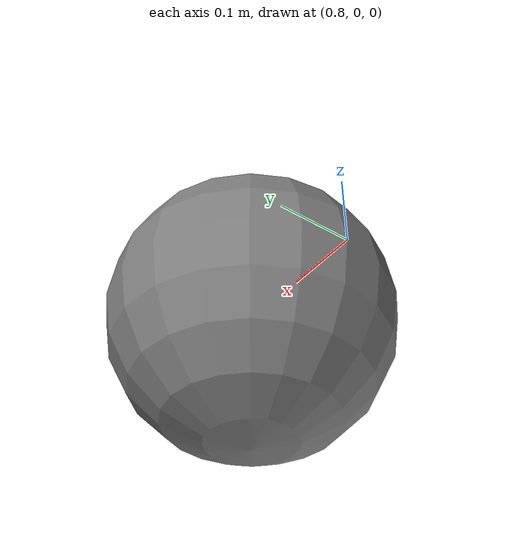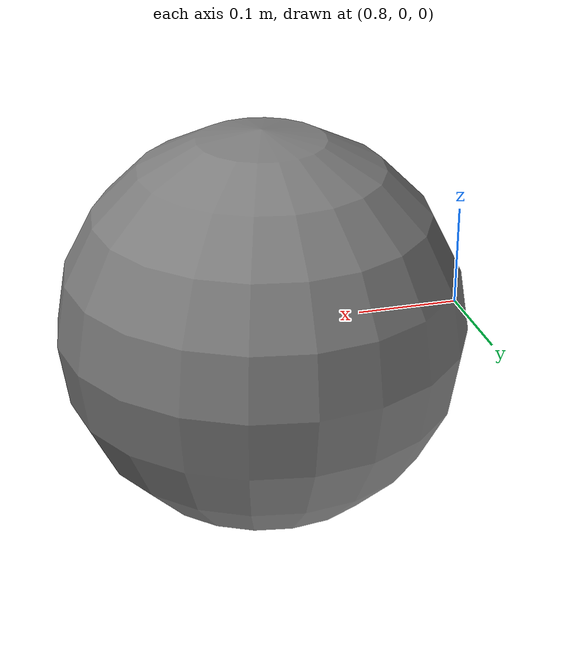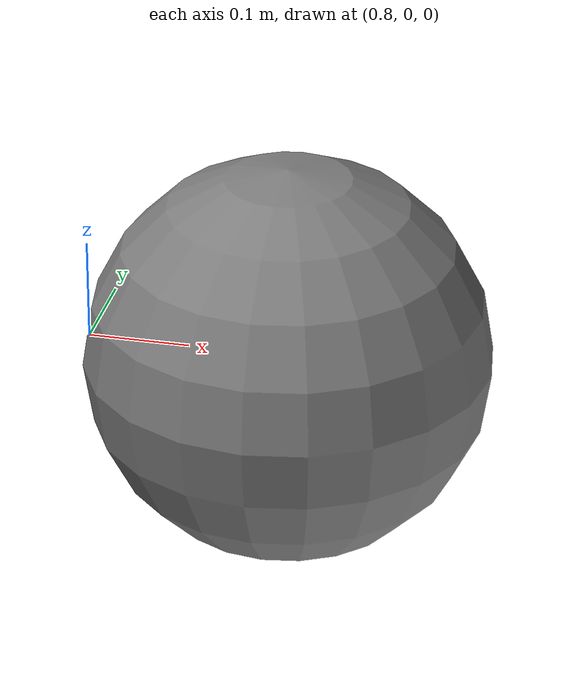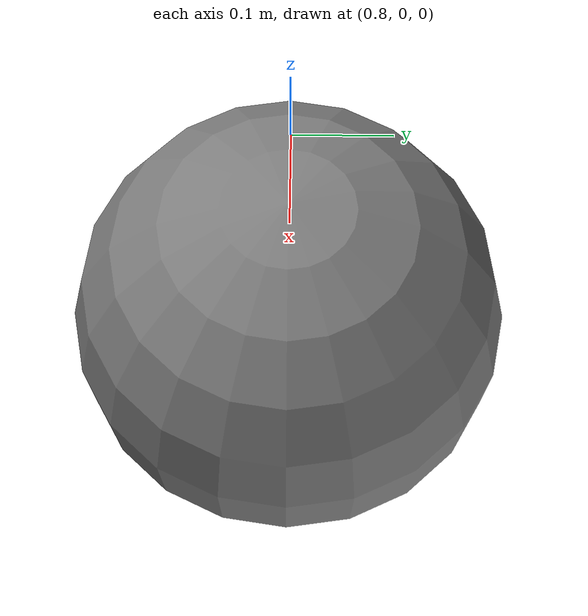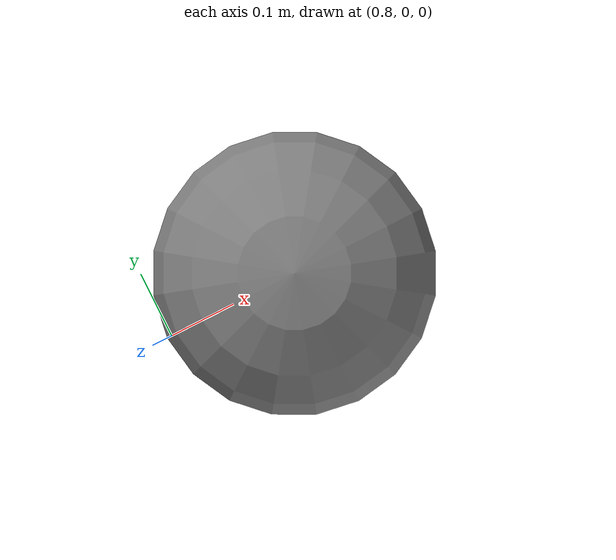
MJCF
<mujoco>
  <option timestep=".1"/>
  <worldbody>
    <body>
      <joint type="hinge" axis="0 1 0"/>
      <geom type="sphere" size=".2" pos="1 0 0"/>
      <site name="site0" pos="1 0 0"/>
    </body>
    <site name="site1" pos="1 0 0"/>
  </worldbody>
  <tendon>
    <spatial damping="5">
      <site site="site0"/>
      <site site="site1"/>
    </spatial>
  </tendon>
  <keyframe>
    <key qpos="1" qvel=".5"/>
  </keyframe>
</mujoco>
